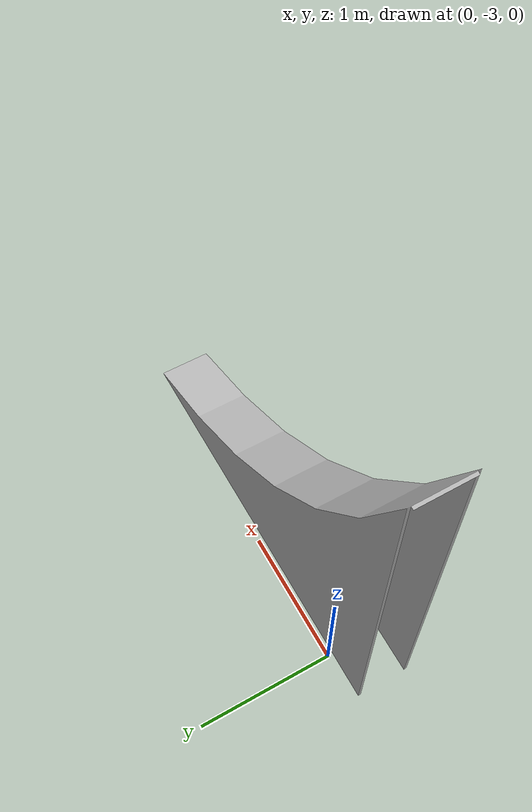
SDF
<?xml version="1.0"?>
<sdf version="1.6">
 <model name="bracket_toe">
   <pose>0 0 0 0 0 0</pose>
   <static>true</static>
   <link name="link">
     <collision name="collision">
       <geometry>
         <mesh>
          <uri>model://bracket_toe/meshes/bracket_toe.dae</uri>
        </mesh>
       </geometry>
     </collision>
     <visual name="visual">
       <geometry>
         <mesh>
          <uri>model://bracket_toe/meshes/bracket_toe.dae</uri>
        </mesh>
       </geometry>
     </visual>
   </link>
 </model>
</sdf>
